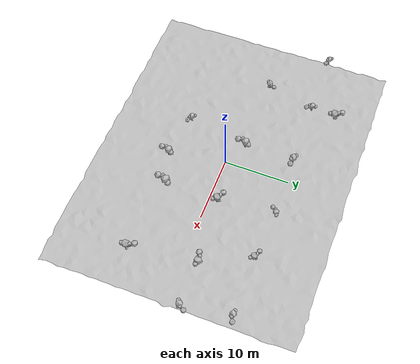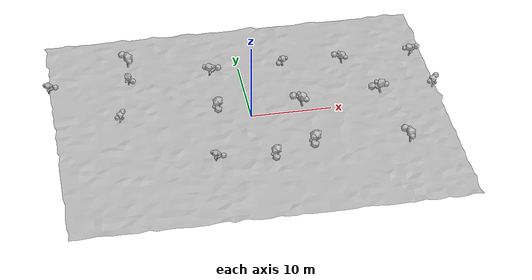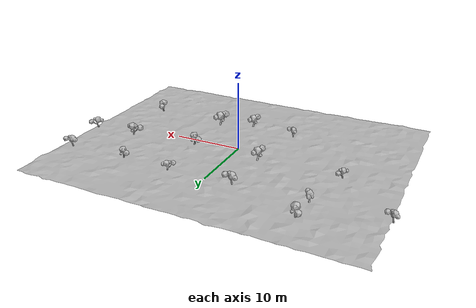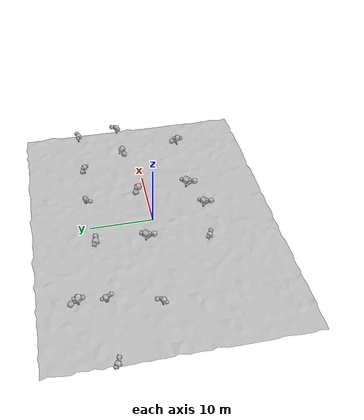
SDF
<?xml version='1.0' encoding='ASCII'?>
<sdf version='1.4'>
  <world name='procedural_orchard'>

    <spherical_coordinates>
      <surface_model>EARTH_WGS84</surface_model>
      <latitude_deg>37.335</latitude_deg>
      <longitude_deg>-121.881</longitude_deg>
      <elevation>0.0</elevation>
      <heading_deg>0</heading_deg>
    </spherical_coordinates>

    <physics type='ode'>
      <max_step_size>0.003</max_step_size>
      <real_time_factor>1.0</real_time_factor>
      <gravity>0 0 -9.8</gravity>
    </physics>
    <plugin name='gz::sim::systems::Physics' filename='libgz-sim-physics-system.so'/>
    <plugin name='gz::sim::systems::UserCommands' filename='libgz-sim-user-commands-system.so'/>
    <plugin name='gz::sim::systems::SceneBroadcaster' filename='libgz-sim-scene-broadcaster-system.so'/>
    <plugin name='gz::sim::systems::Sensors' filename='libgz-sim-sensors-system.so'>
      <render_engine>ogre2</render_engine>
    </plugin>
    <plugin name='gz::sim::systems::Imu' filename='libgz-sim-imu-system.so'/>
    <plugin name='gz::sim::systems::NavSat' filename='libgz-sim-navsat-system.so'/>
    <scene>
      <ambient>1 1 1 1</ambient>
      <background>0.3 0.7 0.9 1</background>
      <shadows>1</shadows>
      <sky><clouds><speed>12</speed></clouds></sky>
    </scene>
    <light name='sun' type='directional'>
      <cast_shadows>1</cast_shadows>
      <pose>0 0 10 0 -0 0</pose>
      <diffuse>1.0 1.0 1.0 1</diffuse>
      <specular>0.2 0.2 0.2 1</specular>
      <direction>-0.5 0.5 -1.0</direction>
    </light>

    <model name='orchard_ground'>
      <static>true</static>
      <pose>0 0 0 0 0 0</pose>
      <link name='link'>
        <collision name='col'><geometry><mesh><uri>model://orchard/orchard_world.dae</uri></mesh></geometry></collision>
        <visual name='vis'><geometry><mesh><uri>model://orchard/orchard_world.dae</uri></mesh></geometry></visual>
      </link>
    </model>

    <model name='tree_0'>
      <static>true</static>
      <pose>1.400 -9.000 0 0 0 0.464</pose>
      <link name='link'>
        <visual name='visual'>
          <geometry><mesh>
            <uri>model://orchard/orchard_tree_1.dae</uri>
            <scale>1.536 1.536 1.536</scale>
          </mesh></geometry>
        </visual>
        <collision name='trunk_collision'>
          <pose>0 0 0.5 0 0 0</pose>
          <geometry>
            <cylinder>
              <radius>0.2</radius>
              <length>1.0</length>
            </cylinder>
          </geometry>
        </collision>
      </link>
    </model>

    <model name='tree_2'>
      <static>true</static>
      <pose>-5.300 -7.900 0 0 0 1.761</pose>
      <link name='link'>
        <visual name='visual'>
          <geometry><mesh>
            <uri>model://orchard/orchard_tree_1.dae</uri>
            <scale>1.187 1.187 1.187</scale>
          </mesh></geometry>
        </visual>
        <collision name='trunk_collision'>
          <pose>0 0 0.5 0 0 0</pose>
          <geometry>
            <cylinder>
              <radius>0.2</radius>
              <length>1.0</length>
            </cylinder>
          </geometry>
        </collision>
      </link>
    </model>

    <model name='tree_3'>
      <static>true</static>
      <pose>18.000 -7.600 0 0 0 4.204</pose>
      <link name='link'>
        <visual name='visual'>
          <geometry><mesh>
            <uri>model://orchard/orchard_tree_1.dae</uri>
            <scale>1.541 1.541 1.541</scale>
          </mesh></geometry>
        </visual>
        <collision name='trunk_collision'>
          <pose>0 0 0.5 0 0 0</pose>
          <geometry>
            <cylinder>
              <radius>0.2</radius>
              <length>1.0</length>
            </cylinder>
          </geometry>
        </collision>
      </link>
    </model>

    <model name='tree_4'>
      <static>true</static>
      <pose>6.400 -7.400 0 0 0 0.390</pose>
      <link name='link'>
        <visual name='visual'>
          <geometry><mesh>
            <uri>model://orchard/orchard_tree_1.dae</uri>
            <scale>1.737 1.737 1.737</scale>
          </mesh></geometry>
        </visual>
        <collision name='trunk_collision'>
          <pose>0 0 0.5 0 0 0</pose>
          <geometry>
            <cylinder>
              <radius>0.2</radius>
              <length>1.0</length>
            </cylinder>
          </geometry>
        </collision>
      </link>
    </model>

    <model name='tree_5'>
      <static>true</static>
      <pose>-4.000 1.400 0 0 0 0.533</pose>
      <link name='link'>
        <visual name='visual'>
          <geometry><mesh>
            <uri>model://orchard/orchard_tree_1.dae</uri>
            <scale>1.603 1.603 1.603</scale>
          </mesh></geometry>
        </visual>
        <collision name='trunk_collision'>
          <pose>0 0 0.5 0 0 0</pose>
          <geometry>
            <cylinder>
              <radius>0.2</radius>
              <length>1.0</length>
            </cylinder>
          </geometry>
        </collision>
      </link>
    </model>

    <model name='tree_6'>
      <static>true</static>
      <pose>23.800 2.600 0 0 0 3.154</pose>
      <link name='link'>
        <visual name='visual'>
          <geometry><mesh>
            <uri>model://orchard/orchard_tree_1.dae</uri>
            <scale>1.327 1.327 1.327</scale>
          </mesh></geometry>
        </visual>
        <collision name='trunk_collision'>
          <pose>0 0 0.5 0 0 0</pose>
          <geometry>
            <cylinder>
              <radius>0.2</radius>
              <length>1.0</length>
            </cylinder>
          </geometry>
        </collision>
      </link>
    </model>

    <model name='tree_7'>
      <static>true</static>
      <pose>6.300 1.500 0 0 0 4.852</pose>
      <link name='link'>
        <visual name='visual'>
          <geometry><mesh>
            <uri>model://orchard/orchard_tree_1.dae</uri>
            <scale>1.526 1.526 1.526</scale>
          </mesh></geometry>
        </visual>
        <collision name='trunk_collision'>
          <pose>0 0 0.5 0 0 0</pose>
          <geometry>
            <cylinder>
              <radius>0.2</radius>
              <length>1.0</length>
            </cylinder>
          </geometry>
        </collision>
      </link>
    </model>

    <model name='tree_8'>
      <static>true</static>
      <pose>-15.800 1.900 0 0 0 3.312</pose>
      <link name='link'>
        <visual name='visual'>
          <geometry><mesh>
            <uri>model://orchard/orchard_tree_1.dae</uri>
            <scale>1.178 1.178 1.178</scale>
          </mesh></geometry>
        </visual>
        <collision name='trunk_collision'>
          <pose>0 0 0.5 0 0 0</pose>
          <geometry>
            <cylinder>
              <radius>0.2</radius>
              <length>1.0</length>
            </cylinder>
          </geometry>
        </collision>
      </link>
    </model>

    <model name='tree_9'>
      <static>true</static>
      <pose>16.400 2.300 0 0 0 5.557</pose>
      <link name='link'>
        <visual name='visual'>
          <geometry><mesh>
            <uri>model://orchard/orchard_tree_1.dae</uri>
            <scale>1.545 1.545 1.545</scale>
          </mesh></geometry>
        </visual>
        <collision name='trunk_collision'>
          <pose>0 0 0.5 0 0 0</pose>
          <geometry>
            <cylinder>
              <radius>0.2</radius>
              <length>1.0</length>
            </cylinder>
          </geometry>
        </collision>
      </link>
    </model>

    <model name='tree_10'>
      <static>true</static>
      <pose>-14.000 9.000 0 0 0 1.183</pose>
      <link name='link'>
        <visual name='visual'>
          <geometry><mesh>
            <uri>model://orchard/orchard_tree_1.dae</uri>
            <scale>1.232 1.232 1.232</scale>
          </mesh></geometry>
        </visual>
        <collision name='trunk_collision'>
          <pose>0 0 0.5 0 0 0</pose>
          <geometry>
            <cylinder>
              <radius>0.2</radius>
              <length>1.0</length>
            </cylinder>
          </geometry>
        </collision>
      </link>
    </model>

    <model name='tree_11'>
      <static>true</static>
      <pose>-23.900 9.000 0 0 0 1.884</pose>
      <link name='link'>
        <visual name='visual'>
          <geometry><mesh>
            <uri>model://orchard/orchard_tree_1.dae</uri>
            <scale>1.191 1.191 1.191</scale>
          </mesh></geometry>
        </visual>
        <collision name='trunk_collision'>
          <pose>0 0 0.5 0 0 0</pose>
          <geometry>
            <cylinder>
              <radius>0.2</radius>
              <length>1.0</length>
            </cylinder>
          </geometry>
        </collision>
      </link>
    </model>

    <model name='tree_12'>
      <static>true</static>
      <pose>13.100 9.600 0 0 0 4.902</pose>
      <link name='link'>
        <visual name='visual'>
          <geometry><mesh>
            <uri>model://orchard/orchard_tree_1.dae</uri>
            <scale>1.309 1.309 1.309</scale>
          </mesh></geometry>
        </visual>
        <collision name='trunk_collision'>
          <pose>0 0 0.5 0 0 0</pose>
          <geometry>
            <cylinder>
              <radius>0.2</radius>
              <length>1.0</length>
            </cylinder>
          </geometry>
        </collision>
      </link>
    </model>

    <model name='tree_13'>
      <static>true</static>
      <pose>22.700 9.600 0 0 0 2.464</pose>
      <link name='link'>
        <visual name='visual'>
          <geometry><mesh>
            <uri>model://orchard/orchard_tree_1.dae</uri>
            <scale>1.325 1.325 1.325</scale>
          </mesh></geometry>
        </visual>
        <collision name='trunk_collision'>
          <pose>0 0 0.5 0 0 0</pose>
          <geometry>
            <cylinder>
              <radius>0.2</radius>
              <length>1.0</length>
            </cylinder>
          </geometry>
        </collision>
      </link>
    </model>

    <model name='tree_14'>
      <static>true</static>
      <pose>5.500 9.800 0 0 0 6.179</pose>
      <link name='link'>
        <visual name='visual'>
          <geometry><mesh>
            <uri>model://orchard/orchard_tree_1.dae</uri>
            <scale>1.170 1.170 1.170</scale>
          </mesh></geometry>
        </visual>
        <collision name='trunk_collision'>
          <pose>0 0 0.5 0 0 0</pose>
          <geometry>
            <cylinder>
              <radius>0.2</radius>
              <length>1.0</length>
            </cylinder>
          </geometry>
        </collision>
      </link>
    </model>

    <model name='tree_15'>
      <static>true</static>
      <pose>-3.400 9.400 0 0 0 2.118</pose>
      <link name='link'>
        <visual name='visual'>
          <geometry><mesh>
            <uri>model://orchard/orchard_tree_1.dae</uri>
            <scale>1.410 1.410 1.410</scale>
          </mesh></geometry>
        </visual>
        <collision name='trunk_collision'>
          <pose>0 0 0.5 0 0 0</pose>
          <geometry>
            <cylinder>
              <radius>0.2</radius>
              <length>1.0</length>
            </cylinder>
          </geometry>
        </collision>
      </link>
    </model>

    <model name='tree_16'>
      <static>true</static>
      <pose>-13.900 13.500 0 0 0 4.359</pose>
      <link name='link'>
        <visual name='visual'>
          <geometry><mesh>
            <uri>model://orchard/orchard_tree_1.dae</uri>
            <scale>1.554 1.554 1.554</scale>
          </mesh></geometry>
        </visual>
        <collision name='trunk_collision'>
          <pose>0 0 0.5 0 0 0</pose>
          <geometry>
            <cylinder>
              <radius>0.2</radius>
              <length>1.0</length>
            </cylinder>
          </geometry>
        </collision>
      </link>
    </model>
  </world>
</sdf>
